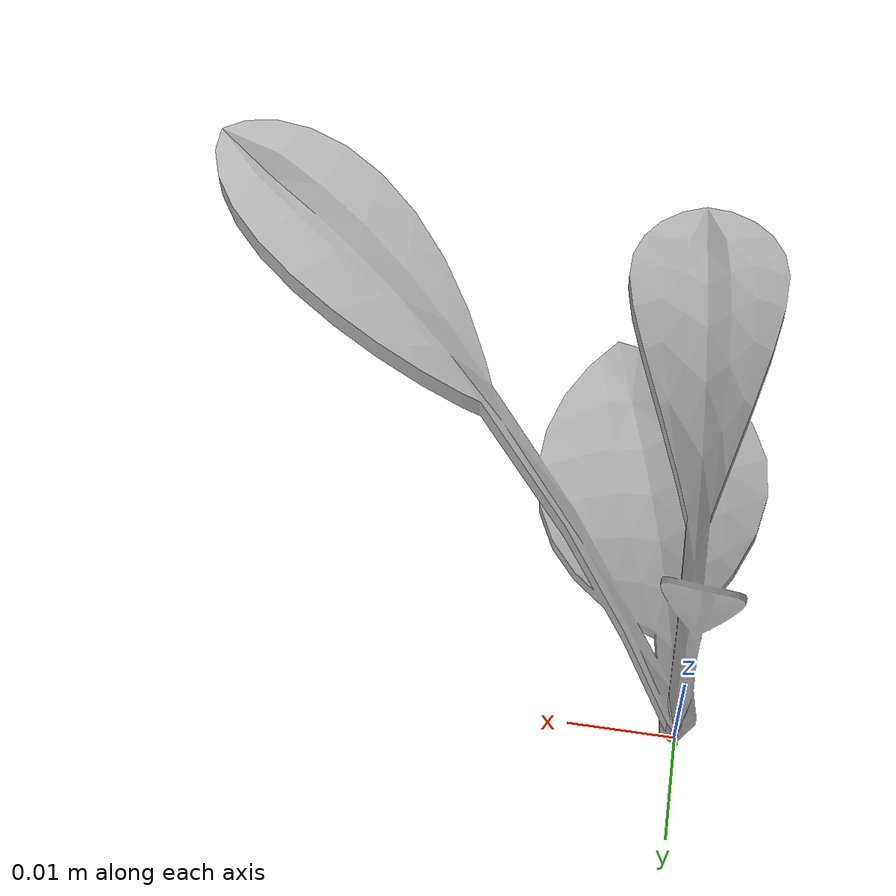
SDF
<sdf version="1.6">
  <model name="sugar_beet_30">
    <static>true</static>
    <link name="body">
      <visual name="visual">
        <geometry>
          <mesh>
            <uri>file:///sugar_beet_30/media/sugar_beet.dae</uri>
          </mesh>
        </geometry>
      </visual>
    </link>
  </model>
</sdf>
